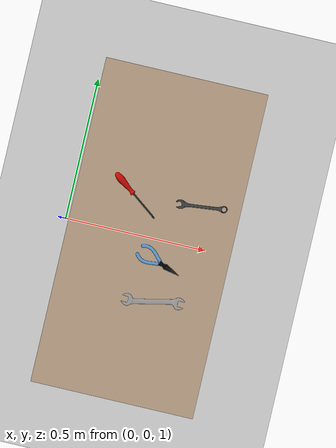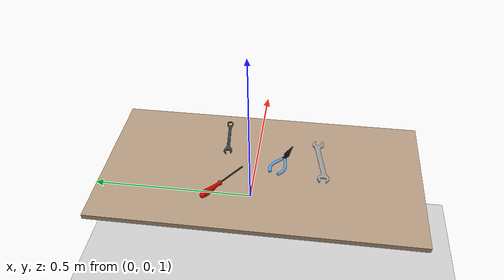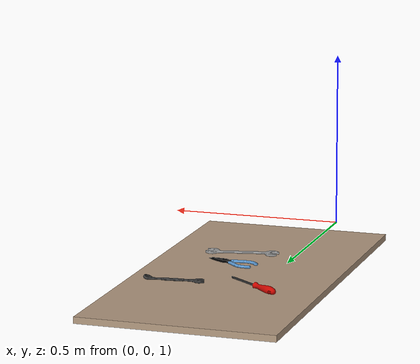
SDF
<sdf version="1.5">
 <world name="default">
  <scene><shadows>true</shadows></scene>
  <light name="sun" type="directional">
   <pose>0 0 10 0 -0 0</pose>
   <diffuse>0.8 0.8 0.8 1</diffuse>
   <specular>0.1 0.1 0.1 1</specular>
   <attenuation>
    <range>1000</range>
    <constant>0.9</constant>
    <linear>0.01</linear>
    <quadratic>0.001</quadratic>
   </attenuation>
   <direction>-0.5 0.5 -1</direction>
  </light>
  <physics type="ode">
   <max_step_size>0.001</max_step_size>
   <real_time_factor>1</real_time_factor>
   <real_time_update_rate>1000</real_time_update_rate>
   <gravity>0 0 -9.8</gravity>
  </physics>
  <include><uri>model://ground_plane</uri></include>
  <model name="table_plane">
   <pose>0.0 0.0 0.8   0 0 0</pose>
   <link name="link_0">
    <visual name="visual">
     <pose>0.3 0.0 0.01   0 0 0</pose>
     <geometry><box><size>0.6 1.2 0.02</size></box></geometry>
     <material><diffuse>0.7 0.6 0.5 1.0</diffuse></material>
    </visual>
    <collision name="simple_0">
     <pose>0.3 0.0 0.01   0 0 0</pose>
     <geometry><box><size>0.6 1.2 0.02</size></box></geometry>
    </collision>
   </link>
   <static>1</static>
  </model>
  <include><pose>0.364 -0.220 0.825  0.00 0.00 0.213</pose><uri>model://jsk_wrench</uri></include>
  <include><pose>0.222 0.132 0.825  0.00 0.00 2.50</pose><uri>model://jsk_screw_driver</uri></include>
  <include><pose>0.36 -0.079 0.830  0.00 0.00 -0.37</pose><uri>model://jsk_plier</uri></include>
  <include><pose>0.453 0.152 0.825  0.00 0.00 0.105</pose><uri>model://jsk_open_end_wrench</uri></include>
 </world>
</sdf>

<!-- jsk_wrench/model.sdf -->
<sdf version='1.6'>
  <model name='jsk_wrench'>
    <link name='link_0'>
      <inertial>
        <mass>0.5</mass>
        <pose> 0.02 0 0 0 0 0</pose>
        <inertia>
          <ixx>6.0e-5</ixx>
          <iyy>2.0e-3</iyy>
          <izz>2.0e-3</izz>
          <ixy>0</ixy>
          <ixz>0</ixz>
          <iyz>0</iyz>
        </inertia>
      </inertial>
      <visual name='visual'>
        <pose frame=''>0 0 0 1.57079632679490 -0 0.26</pose>
        <geometry>
          <mesh>
            <uri>model://jsk_wrench/meshes/wrench.dae</uri>
            <scale>0.0017 0.0017 0.0017</scale>
          </mesh>
        </geometry>
      </visual>

      <collision name='simple_0'>
        <laser_retro>0</laser_retro>
        <max_contacts>10</max_contacts>
        <pose frame=''>0 0 0  0 0 0</pose>
        <geometry>
          <box>
            <size>0.18 0.0185 0.007</size>
          </box>
        </geometry>
      </collision>
      <collision name='simple_1'>
        <laser_retro>0</laser_retro>
        <max_contacts>10</max_contacts>
        <pose frame=''>0.095 -0.0075 0 0 0 0</pose>
        <geometry>
          <cylinder>
            <radius> 0.023 </radius>
            <length> 0.007 </length>
          </cylinder>
        </geometry>
      </collision>
      <collision name='simple_2'>
        <laser_retro>0</laser_retro>
        <max_contacts>10</max_contacts>
        <pose frame=''>-0.095 0.0075 0 0 0 0</pose>
        <geometry>
          <cylinder>
            <radius> 0.023 </radius>
            <length> 0.007 </length>
          </cylinder>
        </geometry>
      </collision>
    </link>
  </model>
</sdf>

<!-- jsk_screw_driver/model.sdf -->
<sdf version='1.6'>
  <model name='jsk_screw_driver'>
    <link name='link_0'>
      <inertial>
        <mass>0.5</mass>
        <pose> 0.02 0 0 0 0 0</pose>
        <inertia>
          <ixx>6.0e-5</ixx>
          <iyy>2.0e-3</iyy>
          <izz>2.0e-3</izz>
          <ixy>0</ixy>
          <ixz>0</ixz>
          <iyz>0</iyz>
        </inertia>
      </inertial>
      <visual name='visual'>
        <pose>0 0 -0.002 0 0 0 </pose>
        <geometry>
          <mesh>
            <uri>model://jsk_screw_driver/meshes/screwdriver.dae</uri>
            <scale>0.026 0.026 0.026</scale>
          </mesh>
        </geometry>
      </visual>

      <collision name='simple_0'>
        <laser_retro>0</laser_retro>
        <max_contacts>10</max_contacts>
        <pose> 0.065 0 0 0 1.57079632679490 0</pose>
        <geometry>
          <cylinder>
            <radius>0.0135</radius>
            <length>0.1 </length>
          </cylinder>
        </geometry>
      </collision>
      <collision name='simple_1'>
        <laser_retro>0</laser_retro>
        <max_contacts>10</max_contacts>
        <pose> -0.04 0 0 0 1.57079632679490 0</pose>
        <geometry>
          <cylinder>
            <radius>0.0025</radius>
            <length>0.12 </length>
          </cylinder>
        </geometry>
      </collision>
    </link>
  </model>
</sdf>

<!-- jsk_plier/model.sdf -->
<sdf version='1.6'>
  <model name='jsk_plier'>
    <link name='link_0'>
      <inertial>
        <mass>0.5</mass>
        <pose> -0.02 0 0 0 0 0</pose>
        <inertia>
          <ixx>1.0e-4</ixx>
          <iyy>4.0e-3</iyy>
          <izz>4.0e-3</izz>
          <ixy>0</ixy>
          <ixz>0</ixz>
          <iyz>0</iyz>
        </inertia>
      </inertial>
      <visual name='visual'>
        <pose frame=''>0 0.003 -0.004  1.57079632679490 -0 -1.521 </pose>
        <geometry>
          <mesh>
            <uri>model://jsk_plier/meshes/Pliers-2.dae</uri>
            <scale>0.01 0.01 0.01</scale>
          </mesh>
        </geometry>
      </visual>

      <collision name='collision'>
        <laser_retro>0</laser_retro>
        <max_contacts>10</max_contacts>
        <pose frame=''>0.027 0 0 0 -0 0</pose>
        <geometry>
          <box>
            <size> 0.1 0.02 0.01</size>
          </box>
        </geometry>
      </collision>
      <collision name='collision'>
        <laser_retro>0</laser_retro>
        <max_contacts>10</max_contacts>
        <pose frame=''>-0.055 0 0 0 -0 0</pose>
        <geometry>
          <box>
            <size> 0.05 0.06 0.01</size>
          </box>
        </geometry>
      </collision>
      <collision name='collision'>
        <laser_retro>0</laser_retro>
        <max_contacts>10</max_contacts>
        <pose frame=''>-0.025 0 0 0 -0 0</pose>
        <geometry>
          <box>
            <size> 0.03 0.04 0.01</size>
          </box>
        </geometry>
      </collision>
    </link>
  </model>
</sdf>

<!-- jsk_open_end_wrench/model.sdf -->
<sdf version='1.6'>
  <model name='jsk_open_end_wrench'>
    <link name='link_0'>
      <inertial>
        <mass>0.5</mass>
        <pose> 0.02 0 0 0 0 0</pose>
        <inertia>
          <ixx>6.0e-5</ixx>
          <iyy>2.0e-3</iyy>
          <izz>2.0e-3</izz>
          <ixy>0</ixy>
          <ixz>0</ixz>
          <iyz>0</iyz>
        </inertia>
      </inertial>
      <visual name='visual'>
        <pose frame=''>0 0 -0.00325 0 -0 0</pose>
        <geometry>
          <mesh>
            <uri>model://jsk_open_end_wrench/meshes/Open_End_Wrench.dae</uri>
            <scale>0.08 0.08 0.08</scale>
          </mesh>
        </geometry>
      </visual>

      <collision name='simple_0'>
        <laser_retro>0</laser_retro>
        <max_contacts>10</max_contacts>
        <pose frame=''>0.005 0 0 0 -0 0</pose>
        <geometry>
          <box>
            <size>0.15 0.015 0.0065</size>
          </box>
        </geometry>
      </collision>
      <collision name='simple_1'>
        <laser_retro>0</laser_retro>
        <max_contacts>10</max_contacts>
        <pose frame=''>-0.072 0 0 0 0 0</pose>
        <geometry>
          <cylinder>
            <radius> 0.018 </radius>
            <length> 0.007 </length>
          </cylinder>
        </geometry>
      </collision>
      <collision name='simple_2'>
        <laser_retro>0</laser_retro>
        <max_contacts>10</max_contacts>
        <pose frame=''>0.085 0 0.0026 0 -0.2 0</pose>
        <geometry>
          <cylinder>
            <radius> 0.013 </radius>
            <length> 0.007 </length>
          </cylinder>
        </geometry>
      </collision>
    </link>
  </model>
</sdf>
